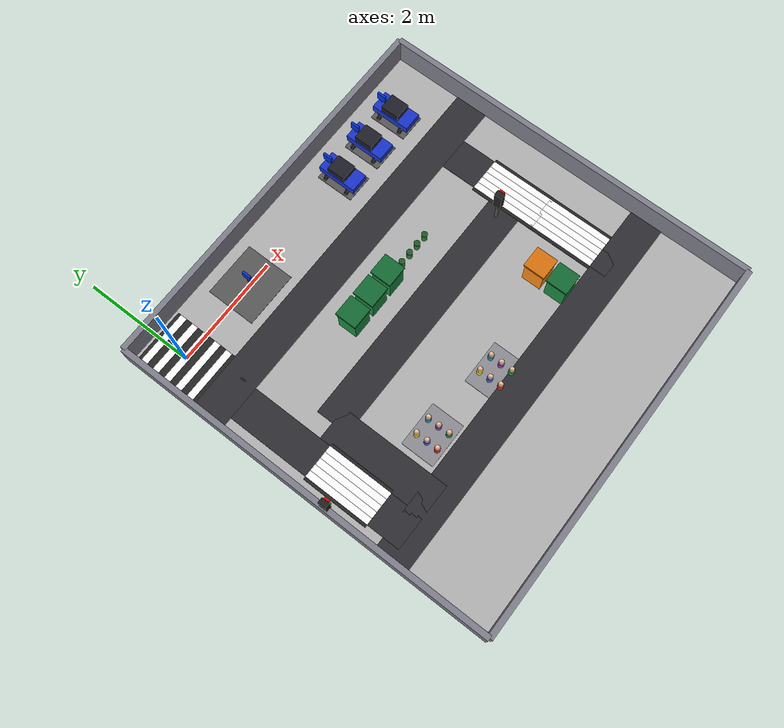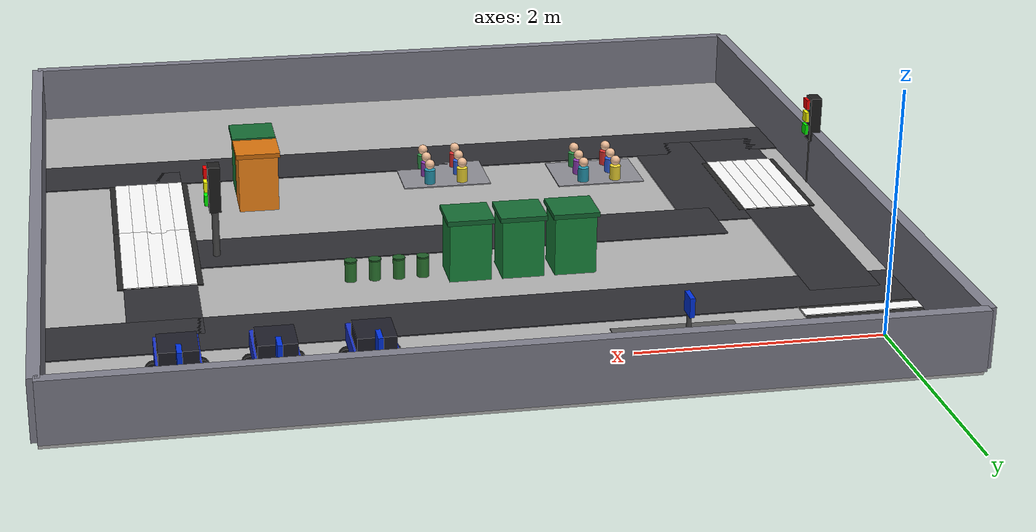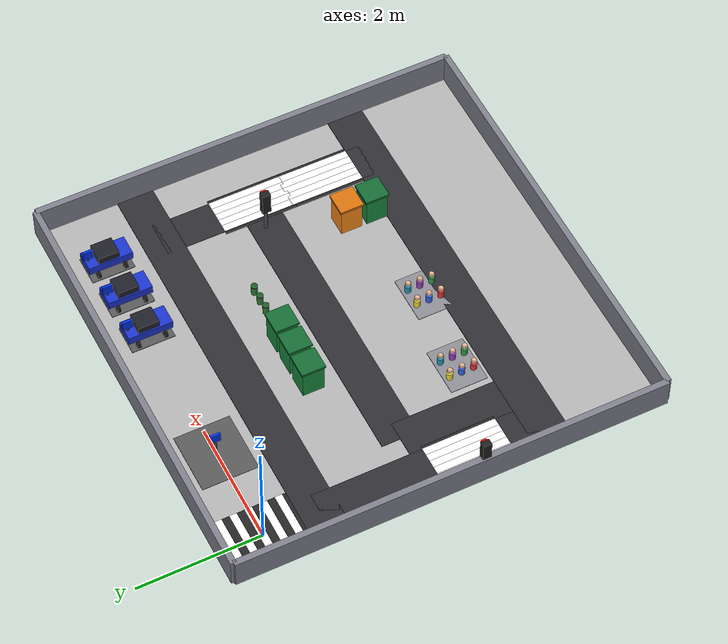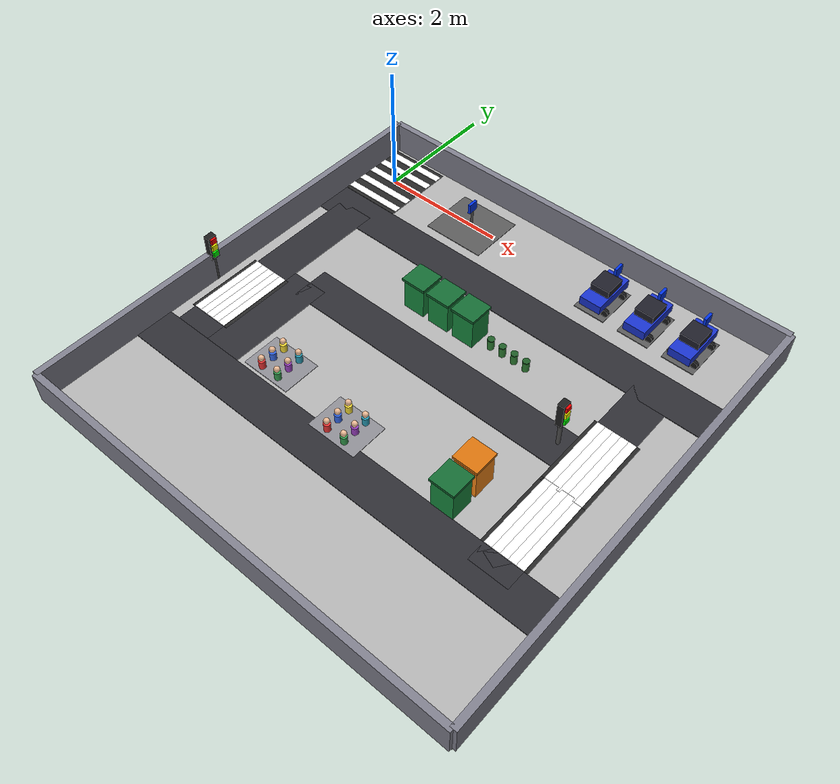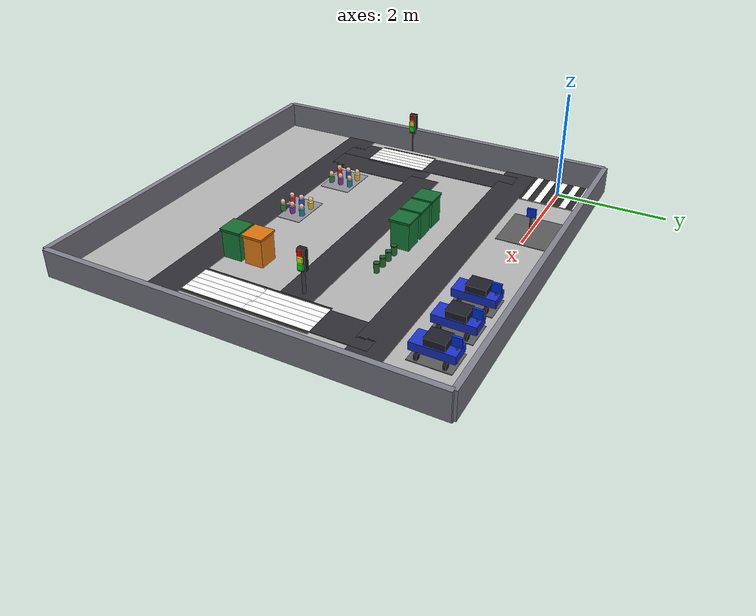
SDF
<?xml version="1.0" ?>

<sdf version="1.6">
  <world name="robot_nav_field">

    <!-- ======================= 物理引擎 ======================= -->
    <physics type="ode">
      <max_step_size>0.001</max_step_size>
      <real_time_factor>1</real_time_factor>
      <real_time_update_rate>1000</real_time_update_rate>
    </physics>

    <!-- ======================= 场景与光照 ======================= -->
    <scene>
      <ambient>0.45 0.45 0.45 1</ambient>
      <background>0.7 0.7 0.7 1</background>
      <shadows>true</shadows>
    </scene>

    <light name="sun" type="directional">
      <pose>0 0 10 0 0 0</pose>
      <diffuse>0.8 0.8 0.8 1</diffuse>
      <specular>0.1 0.1 0.1 1</specular>
      <direction>0.3 0.3 -1</direction>
      <cast_shadows>true</cast_shadows>
    </light>

    <!-- ============================================================
         1. 地面 (Ground Plane)  —— 7m x 7m
         ============================================================ -->
    <model name="ground_plane">
      <static>true</static>
      <pose>2.975 -2.8 -0.025 0 0 0</pose>
      <link name="ground_link">
        <visual name="ground_visual">
          <geometry><box><size>7.0 7.0 0.05</size></box></geometry>
          <material><ambient>0.70 0.70 0.70 1</ambient><diffuse>0.70 0.70 0.70 1</diffuse></material>
        </visual>
        <collision name="ground_collision">
          <geometry><box><size>7.0 7.0 0.05</size></box></geometry>
        </collision>
      </link>
    </model>

    <!-- ============================================================
         2. 外部围墙 (Boundary Walls)  —— 高 0.5m
         ============================================================ -->
    <model name="boundary_walls">
      <static>true</static>
      <link name="north_wall">
        <pose>-0.525 -2.8 0.25 0 0 0</pose>
        <visual name="north_visual"><geometry><box><size>0.1 7.0 0.5</size></box></geometry><material><ambient>0.50 0.50 0.55 1</ambient><diffuse>0.50 0.50 0.55 1</diffuse></material></visual>
        <collision name="north_collision"><geometry><box><size>0.1 7.0 0.5</size></box></geometry></collision>
      </link>
      <link name="south_wall">
        <pose>6.475 -2.8 0.25 0 0 0</pose>
        <visual name="south_visual"><geometry><box><size>0.1 7.0 0.5</size></box></geometry><material><ambient>0.50 0.50 0.55 1</ambient><diffuse>0.50 0.50 0.55 1</diffuse></material></visual>
        <collision name="south_collision"><geometry><box><size>0.1 7.0 0.5</size></box></geometry></collision>
      </link>
      <link name="west_wall">
        <pose>2.975 -6.3 0.25 0 0 0</pose>
        <visual name="west_visual"><geometry><box><size>7.0 0.1 0.5</size></box></geometry><material><ambient>0.50 0.50 0.55 1</ambient><diffuse>0.50 0.50 0.55 1</diffuse></material></visual>
        <collision name="west_collision"><geometry><box><size>7.0 0.1 0.5</size></box></geometry></collision>
      </link>
      <link name="east_wall">
        <pose>2.975 0.7 0.25 0 0 0</pose>
        <visual name="east_visual"><geometry><box><size>7.0 0.1 0.5</size></box></geometry><material><ambient>0.50 0.50 0.55 1</ambient><diffuse>0.50 0.50 0.55 1</diffuse></material></visual>
        <collision name="east_collision"><geometry><box><size>7.0 0.1 0.5</size></box></geometry></collision>
      </link>
    </model>

    <model name="roads">
      <static>true</static>
      <!-- 顶部通道 -->
      <link name="road_top">
        <pose>0 -2.7 0.005 0 0 0</pose>
        <visual name="road_top_visual"><geometry><box><size>0.6 3.6 0.01</size></box></geometry><material><ambient>0.18 0.18 0.20 1</ambient><diffuse>0.18 0.18 0.20 1</diffuse></material></visual>
        <collision name="road_top_collision"><geometry><box><size>0.6 3.6 0.01</size></box></geometry></collision>
      </link>
      <!-- 右侧通道 -->
      <link name="road_right">
        <pose>2.975 -0.9 0.005 0 0 0</pose>
        <visual name="road_right_visual"><geometry><box><size>7.0 0.6 0.01</size></box></geometry><material><ambient>0.18 0.18 0.20 1</ambient><diffuse>0.18 0.18 0.20 1</diffuse></material></visual>
        <collision name="road_right_collision"><geometry><box><size>7.0 0.6 0.01</size></box></geometry></collision>
      </link>
      <!-- 底部横向通道 -->
      <link name="road_bottom_left">
        <pose>5.5 -2.7 0.005 0 0 0</pose>
        <visual name="road_bl_visual"><geometry><box><size>0.6 3.6 0.01</size></box></geometry><material><ambient>0.18 0.18 0.20 1</ambient><diffuse>0.18 0.18 0.20 1</diffuse></material></visual>
        <collision name="road_bl_collision"><geometry><box><size>0.6 3.6 0.01</size></box></geometry></collision>
      </link>
      <!-- 左侧街道 -->
      <link name="road_left">
        <pose>2.975 -4.5 0.005 0 0 0</pose>
        <visual name="road_left_visual"><geometry><box><size>7.0 0.6 0.01</size></box></geometry><material><ambient>0.18 0.18 0.20 1</ambient><diffuse>0.18 0.18 0.20 1</diffuse></material></visual>
        <collision name="road_left_collision"><geometry><box><size>7.0 0.6 0.01</size></box></geometry></collision>
      </link>
      <!-- ===== 新增 L 形内部路 ===== -->
      <!-- 纵向路: 楼宇西侧, Y=-2.5, X 0.6 -> 5.5 -->
      <link name="road_vertical">
        <pose>3.05 -2.5 0.005 0 0 0</pose>
        <visual name="road_vertical_visual"><geometry><box><size>4.9 0.6 0.01</size></box></geometry><material><ambient>0.18 0.18 0.20 1</ambient><diffuse>0.18 0.18 0.20 1</diffuse></material></visual>
        <collision name="road_vertical_collision"><geometry><box><size>4.9 0.6 0.01</size></box></geometry></collision>
      </link>
      <!-- 横向路: 街区A上方, X=0.6, Y -2.5 -> -4.5 -->
      <link name="road_horizontal">
        <pose>0.6 -3.5 0.005 0 0 0</pose>
        <visual name="road_horizontal_visual"><geometry><box><size>0.6 2.0 0.01</size></box></geometry><material><ambient>0.18 0.18 0.20 1</ambient><diffuse>0.18 0.18 0.20 1</diffuse></material></visual>
        <collision name="road_horizontal_collision"><geometry><box><size>0.6 2.0 0.01</size></box></geometry></collision>
      </link>
    </model>

    <!-- ============================================================
         4. 起点/终点区  —— 斑马线, 中心 (0,0,0), 右上角
         ============================================================ -->
    <model name="start_finish">
      <static>true</static>
      <link name="zebra_link">
        <visual name="zebra_base">
          <pose>0 0 0.006 0 0 0</pose>
          <geometry><box><size>1.0 1.2 0.012</size></box></geometry>
          <material><ambient>0.15 0.15 0.15 1</ambient><diffuse>0.15 0.15 0.15 1</diffuse></material>
        </visual>
        <collision name="zebra_base_col">
          <pose>0 0 0.006 0 0 0</pose>
          <geometry><box><size>1.0 1.2 0.012</size></box></geometry>
        </collision>
        <visual name="stripe_1"><pose>0 -0.48 0.013 0 0 0</pose><geometry><box><size>1.0 0.12 0.014</size></box></geometry><material><ambient>1 1 1 1</ambient><diffuse>1 1 1 1</diffuse></material></visual>
        <visual name="stripe_2"><pose>0 -0.24 0.013 0 0 0</pose><geometry><box><size>1.0 0.12 0.014</size></box></geometry><material><ambient>1 1 1 1</ambient><diffuse>1 1 1 1</diffuse></material></visual>
        <visual name="stripe_3"><pose>0 0 0.013 0 0 0</pose><geometry><box><size>1.0 0.12 0.014</size></box></geometry><material><ambient>1 1 1 1</ambient><diffuse>1 1 1 1</diffuse></material></visual>
        <visual name="stripe_4"><pose>0 0.24 0.013 0 0 0</pose><geometry><box><size>1.0 0.12 0.014</size></box></geometry><material><ambient>1 1 1 1</ambient><diffuse>1 1 1 1</diffuse></material></visual>
        <visual name="stripe_5"><pose>0 0.48 0.013 0 0 0</pose><geometry><box><size>1.0 0.12 0.014</size></box></geometry><material><ambient>1 1 1 1</ambient><diffuse>1 1 1 1</diffuse></material></visual>
      </link>
    </model>

    <!-- ============================================================
         5. 顶部斑马线 + 红绿灯  —— (0, -3.3), 横向纹路(东西向路)
         ============================================================ -->
    <model name="zebra_top">
      <static>true</static>
      <pose>0 -3.3 0 0 0 0</pose>
      <link name="zebra_top_link">
        <visual name="base">
          <pose>0 0 0.006 0 0 0</pose>
          <geometry><box><size>0.7 1.2 0.012</size></box></geometry>
          <material><ambient>0.15 0.15 0.15 1</ambient><diffuse>0.15 0.15 0.15 1</diffuse></material>
        </visual>
        <collision name="base_col">
          <pose>0 0 0.006 0 0 0</pose>
          <geometry><box><size>0.7 1.2 0.012</size></box></geometry>
        </collision>
        <visual name="s1"><pose>-0.24 0 0.013 0 0 0</pose><geometry><box><size>0.12 1.2 0.014</size></box></geometry><material><ambient>1 1 1 1</ambient><diffuse>1 1 1 1</diffuse></material></visual>
        <visual name="s2"><pose>-0.12 0 0.013 0 0 0</pose><geometry><box><size>0.12 1.2 0.014</size></box></geometry><material><ambient>1 1 1 1</ambient><diffuse>1 1 1 1</diffuse></material></visual>
        <visual name="s3"><pose>0 0 0.013 0 0 0</pose><geometry><box><size>0.12 1.2 0.014</size></box></geometry><material><ambient>1 1 1 1</ambient><diffuse>1 1 1 1</diffuse></material></visual>
        <visual name="s4"><pose>0.12 0 0.013 0 0 0</pose><geometry><box><size>0.12 1.2 0.014</size></box></geometry><material><ambient>1 1 1 1</ambient><diffuse>1 1 1 1</diffuse></material></visual>
        <visual name="s5"><pose>0.24 0 0.013 0 0 0</pose><geometry><box><size>0.12 1.2 0.014</size></box></geometry><material><ambient>1 1 1 1</ambient><diffuse>1 1 1 1</diffuse></material></visual>
      </link>
    </model>

    <model name="traffic_light_top">
      <static>true</static>
      <link name="tl_top_link">
        <visual name="pole_visual">
          <pose>-0.5 -3.3 0.3 0 0 0</pose>
          <geometry><cylinder><radius>0.03</radius><length>0.6</length></cylinder></geometry>
          <material><ambient>0.30 0.30 0.30 1</ambient><diffuse>0.30 0.30 0.30 1</diffuse></material>
        </visual>
        <collision name="pole_col">
          <pose>-0.5 -3.3 0.3 0 0 0</pose>
          <geometry><cylinder><radius>0.03</radius><length>0.6</length></cylinder></geometry>
        </collision>
        <visual name="housing_visual">
          <pose>-0.5 -3.3 0.62 0 0 0</pose>
          <geometry><box><size>0.10 0.14 0.40</size></box></geometry>
          <material><ambient>0.12 0.12 0.12 1</ambient><diffuse>0.12 0.12 0.12 1</diffuse></material>
        </visual>
        <collision name="housing_col">
          <pose>-0.5 -3.3 0.62 0 0 0</pose>
          <geometry><box><size>0.10 0.14 0.40</size></box></geometry>
        </collision>
        <visual name="red_visual"><pose>-0.43 -3.3 0.76 0 0 0</pose><geometry><box><size>0.03 0.09 0.09</size></box></geometry><material><ambient>1 0 0 1</ambient><diffuse>1 0 0 1</diffuse></material></visual>
        <visual name="yellow_visual"><pose>-0.43 -3.3 0.64 0 0 0</pose><geometry><box><size>0.03 0.09 0.09</size></box></geometry><material><ambient>1 1 0 1</ambient><diffuse>1 1 0 1</diffuse></material></visual>
        <visual name="green_visual"><pose>-0.43 -3.3 0.52 0 0 0</pose><geometry><box><size>0.03 0.09 0.09</size></box></geometry><material><ambient>0 1 0 1</ambient><diffuse>0 1 0 1</diffuse></material></visual>
      </link>
    </model>

    <!-- ============================================================
         6. A街区 (左上角人偶区)  —— 6 个人偶, 移至横向路下方 (1.4, -3.85)
         ============================================================ -->
    <model name="block_a">
      <static>true</static>
      <pose>1.4 -3.85 0 0 0 0</pose>
      <link name="block_a_link">
        <visual name="sidewalk">
          <pose>0 0 0.005 0 0 0</pose>
          <geometry><box><size>0.8 0.6 0.01</size></box></geometry>
          <material><ambient>0.55 0.55 0.58 1</ambient><diffuse>0.55 0.55 0.58 1</diffuse></material>
        </visual>
        <collision name="sidewalk_col">
          <pose>0 0 0.005 0 0 0</pose>
          <geometry><box><size>0.8 0.6 0.01</size></box></geometry>
        </collision>
        <visual name="p1_body"><pose>-0.15 -0.2 0.07 0 0 0</pose><geometry><cylinder><radius>0.05</radius><length>0.14</length></cylinder></geometry><material><ambient>0.90 0.20 0.20 1</ambient><diffuse>0.90 0.20 0.20 1</diffuse></material></visual>
        <visual name="p1_head"><pose>-0.15 -0.2 0.19 0 0 0</pose><geometry><sphere><radius>0.045</radius></sphere></geometry><material><ambient>0.95 0.75 0.60 1</ambient><diffuse>0.95 0.75 0.60 1</diffuse></material></visual>
        <visual name="p2_body"><pose>-0.15 0 0.07 0 0 0</pose><geometry><cylinder><radius>0.05</radius><length>0.14</length></cylinder></geometry><material><ambient>0.20 0.40 0.90 1</ambient><diffuse>0.20 0.40 0.90 1</diffuse></material></visual>
        <visual name="p2_head"><pose>-0.15 0 0.19 0 0 0</pose><geometry><sphere><radius>0.045</radius></sphere></geometry><material><ambient>0.95 0.75 0.60 1</ambient><diffuse>0.95 0.75 0.60 1</diffuse></material></visual>
        <visual name="p3_body"><pose>-0.15 0.2 0.07 0 0 0</pose><geometry><cylinder><radius>0.05</radius><length>0.14</length></cylinder></geometry><material><ambient>0.95 0.85 0.20 1</ambient><diffuse>0.95 0.85 0.20 1</diffuse></material></visual>
        <visual name="p3_head"><pose>-0.15 0.2 0.19 0 0 0</pose><geometry><sphere><radius>0.045</radius></sphere></geometry><material><ambient>0.95 0.75 0.60 1</ambient><diffuse>0.95 0.75 0.60 1</diffuse></material></visual>
        <visual name="p4_body"><pose>0.15 -0.2 0.07 0 0 0</pose><geometry><cylinder><radius>0.05</radius><length>0.14</length></cylinder></geometry><material><ambient>0.20 0.60 0.30 1</ambient><diffuse>0.20 0.60 0.30 1</diffuse></material></visual>
        <visual name="p4_head"><pose>0.15 -0.2 0.19 0 0 0</pose><geometry><sphere><radius>0.045</radius></sphere></geometry><material><ambient>0.95 0.75 0.60 1</ambient><diffuse>0.95 0.75 0.60 1</diffuse></material></visual>
        <visual name="p5_body"><pose>0.15 0 0.07 0 0 0</pose><geometry><cylinder><radius>0.05</radius><length>0.14</length></cylinder></geometry><material><ambient>0.60 0.25 0.75 1</ambient><diffuse>0.60 0.25 0.75 1</diffuse></material></visual>
        <visual name="p5_head"><pose>0.15 0 0.19 0 0 0</pose><geometry><sphere><radius>0.045</radius></sphere></geometry><material><ambient>0.95 0.75 0.60 1</ambient><diffuse>0.95 0.75 0.60 1</diffuse></material></visual>
        <visual name="p6_body"><pose>0.15 0.2 0.07 0 0 0</pose><geometry><cylinder><radius>0.05</radius><length>0.14</length></cylinder></geometry><material><ambient>0.15 0.60 0.70 1</ambient><diffuse>0.15 0.60 0.70 1</diffuse></material></visual>
        <visual name="p6_head"><pose>0.15 0.2 0.19 0 0 0</pose><geometry><sphere><radius>0.045</radius></sphere></geometry><material><ambient>0.95 0.75 0.60 1</ambient><diffuse>0.95 0.75 0.60 1</diffuse></material></visual>
      </link>
    </model>

    <!-- ============================================================
         7. B街区 (左侧中部人偶区)  —— 6 个人偶 (2.8, -4.03)
         ============================================================ -->
    <model name="block_b">
      <static>true</static>
      <pose>2.8 -4.03 0 0 0 0</pose>
      <link name="block_b_link">
        <visual name="sidewalk">
          <pose>0 0 0.005 0 0 0</pose>
          <geometry><box><size>0.8 0.6 0.01</size></box></geometry>
          <material><ambient>0.55 0.55 0.58 1</ambient><diffuse>0.55 0.55 0.58 1</diffuse></material>
        </visual>
        <collision name="sidewalk_col">
          <pose>0 0 0.005 0 0 0</pose>
          <geometry><box><size>0.8 0.6 0.01</size></box></geometry>
        </collision>
        <visual name="p1_body"><pose>-0.15 -0.2 0.07 0 0 0</pose><geometry><cylinder><radius>0.05</radius><length>0.14</length></cylinder></geometry><material><ambient>0.90 0.20 0.20 1</ambient><diffuse>0.90 0.20 0.20 1</diffuse></material></visual>
        <visual name="p1_head"><pose>-0.15 -0.2 0.19 0 0 0</pose><geometry><sphere><radius>0.045</radius></sphere></geometry><material><ambient>0.95 0.75 0.60 1</ambient><diffuse>0.95 0.75 0.60 1</diffuse></material></visual>
        <visual name="p2_body"><pose>-0.15 0 0.07 0 0 0</pose><geometry><cylinder><radius>0.05</radius><length>0.14</length></cylinder></geometry><material><ambient>0.20 0.40 0.90 1</ambient><diffuse>0.20 0.40 0.90 1</diffuse></material></visual>
        <visual name="p2_head"><pose>-0.15 0 0.19 0 0 0</pose><geometry><sphere><radius>0.045</radius></sphere></geometry><material><ambient>0.95 0.75 0.60 1</ambient><diffuse>0.95 0.75 0.60 1</diffuse></material></visual>
        <visual name="p3_body"><pose>-0.15 0.2 0.07 0 0 0</pose><geometry><cylinder><radius>0.05</radius><length>0.14</length></cylinder></geometry><material><ambient>0.95 0.85 0.20 1</ambient><diffuse>0.95 0.85 0.20 1</diffuse></material></visual>
        <visual name="p3_head"><pose>-0.15 0.2 0.19 0 0 0</pose><geometry><sphere><radius>0.045</radius></sphere></geometry><material><ambient>0.95 0.75 0.60 1</ambient><diffuse>0.95 0.75 0.60 1</diffuse></material></visual>
        <visual name="p4_body"><pose>0.15 -0.2 0.07 0 0 0</pose><geometry><cylinder><radius>0.05</radius><length>0.14</length></cylinder></geometry><material><ambient>0.20 0.60 0.30 1</ambient><diffuse>0.20 0.60 0.30 1</diffuse></material></visual>
        <visual name="p4_head"><pose>0.15 -0.2 0.19 0 0 0</pose><geometry><sphere><radius>0.045</radius></sphere></geometry><material><ambient>0.95 0.75 0.60 1</ambient><diffuse>0.95 0.75 0.60 1</diffuse></material></visual>
        <visual name="p5_body"><pose>0.15 0 0.07 0 0 0</pose><geometry><cylinder><radius>0.05</radius><length>0.14</length></cylinder></geometry><material><ambient>0.60 0.25 0.75 1</ambient><diffuse>0.60 0.25 0.75 1</diffuse></material></visual>
        <visual name="p5_head"><pose>0.15 0 0.19 0 0 0</pose><geometry><sphere><radius>0.045</radius></sphere></geometry><material><ambient>0.95 0.75 0.60 1</ambient><diffuse>0.95 0.75 0.60 1</diffuse></material></visual>
        <visual name="p6_body"><pose>0.15 0.2 0.07 0 0 0</pose><geometry><cylinder><radius>0.05</radius><length>0.14</length></cylinder></geometry><material><ambient>0.15 0.60 0.70 1</ambient><diffuse>0.15 0.60 0.70 1</diffuse></material></visual>
        <visual name="p6_head"><pose>0.15 0.2 0.19 0 0 0</pose><geometry><sphere><radius>0.045</radius></sphere></geometry><material><ambient>0.95 0.75 0.60 1</ambient><diffuse>0.95 0.75 0.60 1</diffuse></material></visual>
      </link>
    </model>

    <model name="building_a">
      <static>true</static>
      <pose>2.10 -1.75 0 0 0 0</pose>
      <link name="building_a_link">
        <visual name="body">
          <pose>0 0 0.25 0 0 0</pose>
          <geometry><box><size>0.35 0.35 0.5</size></box></geometry>
          <material><ambient>0.10 0.55 0.25 1</ambient><diffuse>0.10 0.55 0.25 1</diffuse></material>
        </visual>
        <collision name="body_col">
          <pose>0 0 0.25 0 0 0</pose>
          <geometry><box><size>0.35 0.35 0.5</size></box></geometry>
        </collision>
        <visual name="roof">
          <pose>0 0 0.52 0 0 0</pose>
          <geometry><box><size>0.39 0.39 0.04</size></box></geometry>
          <material><ambient>0.08 0.42 0.20 1</ambient><diffuse>0.08 0.42 0.20 1</diffuse></material>
        </visual>
      </link>
    </model>

    <model name="building_b">
      <static>true</static>
      <pose>2.54 -1.75 0 0 0 0</pose>
      <link name="building_b_link">
        <visual name="body">
          <pose>0 0 0.25 0 0 0</pose>
          <geometry><box><size>0.35 0.35 0.5</size></box></geometry>
          <material><ambient>0.10 0.55 0.25 1</ambient><diffuse>0.10 0.55 0.25 1</diffuse></material>
        </visual>
        <collision name="body_col">
          <pose>0 0 0.25 0 0 0</pose>
          <geometry><box><size>0.35 0.35 0.5</size></box></geometry>
        </collision>
        <visual name="roof">
          <pose>0 0 0.52 0 0 0</pose>
          <geometry><box><size>0.39 0.39 0.04</size></box></geometry>
          <material><ambient>0.08 0.42 0.20 1</ambient><diffuse>0.08 0.42 0.20 1</diffuse></material>
        </visual>
      </link>
    </model>

    <model name="building_c">
      <static>true</static>
      <pose>2.98 -1.75 0 0 0 0</pose>
      <link name="building_c_link">
        <visual name="body">
          <pose>0 0 0.25 0 0 0</pose>
          <geometry><box><size>0.35 0.35 0.5</size></box></geometry>
          <material><ambient>0.10 0.55 0.25 1</ambient><diffuse>0.10 0.55 0.25 1</diffuse></material>
        </visual>
        <collision name="body_col">
          <pose>0 0 0.25 0 0 0</pose>
          <geometry><box><size>0.35 0.35 0.5</size></box></geometry>
        </collision>
        <visual name="roof">
          <pose>0 0 0.52 0 0 0</pose>
          <geometry><box><size>0.39 0.39 0.04</size></box></geometry>
          <material><ambient>0.08 0.42 0.20 1</ambient><diffuse>0.08 0.42 0.20 1</diffuse></material>
        </visual>
      </link>
    </model>

    <!-- ============================================================
         9. 电动车停车区 (右侧偏上)  —— 车已删除, 只留 P 停车牌
         ============================================================ -->
    <model name="ev_parking_zone">
      <static>true</static>
      <pose>1.58 0 0 0 0 0</pose>
      <link name="ev_parking_link">
        <visual name="pad">
          <pose>0 0 0.005 0 0 0</pose>
          <geometry><box><size>1.0 0.9 0.01</size></box></geometry>
          <material><ambient>0.35 0.35 0.35 1</ambient><diffuse>0.35 0.35 0.35 1</diffuse></material>
        </visual>
        <collision name="pad_col">
          <pose>0 0 0.005 0 0 0</pose>
          <geometry><box><size>1.0 0.9 0.01</size></box></geometry>
        </collision>
        <visual name="p_pole">
          <pose>0 0 0.175 0 0 0</pose>
          <geometry><cylinder><radius>0.02</radius><length>0.35</length></cylinder></geometry>
          <material><ambient>0.30 0.30 0.30 1</ambient><diffuse>0.30 0.30 0.30 1</diffuse></material>
        </visual>
        <collision name="p_pole_col">
          <pose>0 0 0.175 0 0 0</pose>
          <geometry><cylinder><radius>0.02</radius><length>0.35</length></cylinder></geometry>
        </collision>
        <visual name="p_sign">
          <pose>0 0 0.38 0 0 0</pose>
          <geometry><box><size>0.04 0.16 0.16</size></box></geometry>
          <material><ambient>0.00 0.20 0.90 1</ambient><diffuse>0.00 0.20 0.90 1</diffuse></material>
        </visual>
      </link>
    </model>

    <!-- ============================================================
         10. 停车位区 (1-3号, 右下角)  —— 车位改为东西向(0.5x0.7)
         ============================================================ -->
    <model name="parking_slots">
      <static>true</static>
      <link name="slot_3">
        <pose>4.00 0 0.006 0 0 0</pose>
        <visual name="slot3_visual"><geometry><box><size>0.5 0.7 0.012</size></box></geometry><material><ambient>0.35 0.35 0.35 1</ambient><diffuse>0.35 0.35 0.35 1</diffuse></material></visual>
        <collision name="slot3_col"><geometry><box><size>0.5 0.7 0.012</size></box></geometry></collision>
      </link>
      <link name="slot_2">
        <pose>4.73 0 0.006 0 0 0</pose>
        <visual name="slot2_visual"><geometry><box><size>0.5 0.7 0.012</size></box></geometry><material><ambient>0.35 0.35 0.35 1</ambient><diffuse>0.35 0.35 0.35 1</diffuse></material></visual>
        <collision name="slot2_col"><geometry><box><size>0.5 0.7 0.012</size></box></geometry></collision>
      </link>
      <link name="slot_1">
        <pose>5.45 0 0.006 0 0 0</pose>
        <visual name="slot1_visual"><geometry><box><size>0.5 0.7 0.012</size></box></geometry><material><ambient>0.35 0.35 0.35 1</ambient><diffuse>0.35 0.35 0.35 1</diffuse></material></visual>
        <collision name="slot1_col"><geometry><box><size>0.5 0.7 0.012</size></box></geometry></collision>
      </link>
    </model>

    <!-- ============================================================
         11. 停车位汽车 x3  —— 旋转 90°(yaw=1.5708), 车头朝右(+Y)
         ============================================================ -->
    <model name="car_slot_3">
      <static>true</static>
      <pose>4.00 0 0 0 0 1.5708</pose>
      <link name="car_slot_3_link">
        <visual name="body"><pose>0 0 0.19 0 0 0</pose><geometry><box><size>0.72 0.34 0.14</size></box></geometry><material><ambient>0.10 0.20 0.80 1</ambient><diffuse>0.10 0.20 0.80 1</diffuse></material></visual>
        <collision name="body_col"><pose>0 0 0.19 0 0 0</pose><geometry><box><size>0.72 0.34 0.14</size></box></geometry></collision>
        <visual name="cabin"><pose>0.02 0 0.32 0 0 0</pose><geometry><box><size>0.34 0.30 0.12</size></box></geometry><material><ambient>0.12 0.12 0.16 1</ambient><diffuse>0.12 0.12 0.16 1</diffuse></material></visual>
        <visual name="w1"><pose>0.22 0.18 0.06 0 1.5708 0</pose><geometry><cylinder><radius>0.06</radius><length>0.05</length></cylinder></geometry><material><ambient>0.10 0.10 0.10 1</ambient><diffuse>0.10 0.10 0.10 1</diffuse></material></visual>
        <visual name="w2"><pose>0.22 -0.18 0.06 0 1.5708 0</pose><geometry><cylinder><radius>0.06</radius><length>0.05</length></cylinder></geometry><material><ambient>0.10 0.10 0.10 1</ambient><diffuse>0.10 0.10 0.10 1</diffuse></material></visual>
        <visual name="w3"><pose>-0.22 0.18 0.06 0 1.5708 0</pose><geometry><cylinder><radius>0.06</radius><length>0.05</length></cylinder></geometry><material><ambient>0.10 0.10 0.10 1</ambient><diffuse>0.10 0.10 0.10 1</diffuse></material></visual>
        <visual name="w4"><pose>-0.22 -0.18 0.06 0 1.5708 0</pose><geometry><cylinder><radius>0.06</radius><length>0.05</length></cylinder></geometry><material><ambient>0.10 0.10 0.10 1</ambient><diffuse>0.10 0.10 0.10 1</diffuse></material></visual>
      </link>
    </model>

    <model name="car_slot_2">
      <static>true</static>
      <pose>4.73 0 0 0 0 1.5708</pose>
      <link name="car_slot_2_link">
        <visual name="body"><pose>0 0 0.19 0 0 0</pose><geometry><box><size>0.72 0.34 0.14</size></box></geometry><material><ambient>0.10 0.20 0.80 1</ambient><diffuse>0.10 0.20 0.80 1</diffuse></material></visual>
        <collision name="body_col"><pose>0 0 0.19 0 0 0</pose><geometry><box><size>0.72 0.34 0.14</size></box></geometry></collision>
        <visual name="cabin"><pose>0.02 0 0.32 0 0 0</pose><geometry><box><size>0.34 0.30 0.12</size></box></geometry><material><ambient>0.12 0.12 0.16 1</ambient><diffuse>0.12 0.12 0.16 1</diffuse></material></visual>
        <visual name="w1"><pose>0.22 0.18 0.06 0 1.5708 0</pose><geometry><cylinder><radius>0.06</radius><length>0.05</length></cylinder></geometry><material><ambient>0.10 0.10 0.10 1</ambient><diffuse>0.10 0.10 0.10 1</diffuse></material></visual>
        <visual name="w2"><pose>0.22 -0.18 0.06 0 1.5708 0</pose><geometry><cylinder><radius>0.06</radius><length>0.05</length></cylinder></geometry><material><ambient>0.10 0.10 0.10 1</ambient><diffuse>0.10 0.10 0.10 1</diffuse></material></visual>
        <visual name="w3"><pose>-0.22 0.18 0.06 0 1.5708 0</pose><geometry><cylinder><radius>0.06</radius><length>0.05</length></cylinder></geometry><material><ambient>0.10 0.10 0.10 1</ambient><diffuse>0.10 0.10 0.10 1</diffuse></material></visual>
        <visual name="w4"><pose>-0.22 -0.18 0.06 0 1.5708 0</pose><geometry><cylinder><radius>0.06</radius><length>0.05</length></cylinder></geometry><material><ambient>0.10 0.10 0.10 1</ambient><diffuse>0.10 0.10 0.10 1</diffuse></material></visual>
      </link>
    </model>

    <model name="car_slot_1">
      <static>true</static>
      <pose>5.45 0 0 0 0 1.5708</pose>
      <link name="car_slot_1_link">
        <visual name="body"><pose>0 0 0.19 0 0 0</pose><geometry><box><size>0.72 0.34 0.14</size></box></geometry><material><ambient>0.10 0.20 0.80 1</ambient><diffuse>0.10 0.20 0.80 1</diffuse></material></visual>
        <collision name="body_col"><pose>0 0 0.19 0 0 0</pose><geometry><box><size>0.72 0.34 0.14</size></box></geometry></collision>
        <visual name="cabin"><pose>0.02 0 0.32 0 0 0</pose><geometry><box><size>0.34 0.30 0.12</size></box></geometry><material><ambient>0.12 0.12 0.16 1</ambient><diffuse>0.12 0.12 0.16 1</diffuse></material></visual>
        <visual name="w1"><pose>0.22 0.18 0.06 0 1.5708 0</pose><geometry><cylinder><radius>0.06</radius><length>0.05</length></cylinder></geometry><material><ambient>0.10 0.10 0.10 1</ambient><diffuse>0.10 0.10 0.10 1</diffuse></material></visual>
        <visual name="w2"><pose>0.22 -0.18 0.06 0 1.5708 0</pose><geometry><cylinder><radius>0.06</radius><length>0.05</length></cylinder></geometry><material><ambient>0.10 0.10 0.10 1</ambient><diffuse>0.10 0.10 0.10 1</diffuse></material></visual>
        <visual name="w3"><pose>-0.22 0.18 0.06 0 1.5708 0</pose><geometry><cylinder><radius>0.06</radius><length>0.05</length></cylinder></geometry><material><ambient>0.10 0.10 0.10 1</ambient><diffuse>0.10 0.10 0.10 1</diffuse></material></visual>
        <visual name="w4"><pose>-0.22 -0.18 0.06 0 1.5708 0</pose><geometry><cylinder><radius>0.06</radius><length>0.05</length></cylinder></geometry><material><ambient>0.10 0.10 0.10 1</ambient><diffuse>0.10 0.10 0.10 1</diffuse></material></visual>
      </link>
    </model>

    <!-- 停车位 P 指示牌 x3 -->
    <model name="p_sign_slot_3">
      <static>true</static>
      <pose>4.00 0.3 0 0 0 0</pose>
      <link name="ps3_link">
        <visual name="pole"><pose>0 0 0.175 0 0 0</pose><geometry><cylinder><radius>0.02</radius><length>0.35</length></cylinder></geometry><material><ambient>0.30 0.30 0.30 1</ambient><diffuse>0.30 0.30 0.30 1</diffuse></material></visual>
        <collision name="pole_col"><pose>0 0 0.175 0 0 0</pose><geometry><cylinder><radius>0.02</radius><length>0.35</length></cylinder></geometry></collision>
        <visual name="sign"><pose>0 0 0.38 0 0 0</pose><geometry><box><size>0.04 0.16 0.16</size></box></geometry><material><ambient>0.00 0.20 0.90 1</ambient><diffuse>0.00 0.20 0.90 1</diffuse></material></visual>
      </link>
    </model>
    <model name="p_sign_slot_2">
      <static>true</static>
      <pose>4.73 0.3 0 0 0 0</pose>
      <link name="ps2_link">
        <visual name="pole"><pose>0 0 0.175 0 0 0</pose><geometry><cylinder><radius>0.02</radius><length>0.35</length></cylinder></geometry><material><ambient>0.30 0.30 0.30 1</ambient><diffuse>0.30 0.30 0.30 1</diffuse></material></visual>
        <collision name="pole_col"><pose>0 0 0.175 0 0 0</pose><geometry><cylinder><radius>0.02</radius><length>0.35</length></cylinder></geometry></collision>
        <visual name="sign"><pose>0 0 0.38 0 0 0</pose><geometry><box><size>0.04 0.16 0.16</size></box></geometry><material><ambient>0.00 0.20 0.90 1</ambient><diffuse>0.00 0.20 0.90 1</diffuse></material></visual>
      </link>
    </model>
    <model name="p_sign_slot_1">
      <static>true</static>
      <pose>5.45 0.3 0 0 0 0</pose>
      <link name="ps1_link">
        <visual name="pole"><pose>0 0 0.175 0 0 0</pose><geometry><cylinder><radius>0.02</radius><length>0.35</length></cylinder></geometry><material><ambient>0.30 0.30 0.30 1</ambient><diffuse>0.30 0.30 0.30 1</diffuse></material></visual>
        <collision name="pole_col"><pose>0 0 0.175 0 0 0</pose><geometry><cylinder><radius>0.02</radius><length>0.35</length></cylinder></geometry></collision>
        <visual name="sign"><pose>0 0 0.38 0 0 0</pose><geometry><box><size>0.04 0.16 0.16</size></box></geometry><material><ambient>0.00 0.20 0.90 1</ambient><diffuse>0.00 0.20 0.90 1</diffuse></material></visual>
      </link>
    </model>

    <!-- ============================================================
         12. 垃圾桶 x4  —— 缩小至 1/3, 移至楼宇C下方 (Y=-1.75)
         ============================================================ -->
    <model name="trash_bins">
      <static>true</static>
      <link name="bin_1">
        <pose>3.35 -1.75 0 0 0 0</pose>
        <visual name="body"><pose>0 0 0.085 0 0 0</pose><geometry><cylinder><radius>0.05</radius><length>0.17</length></cylinder></geometry><material><ambient>0.18 0.49 0.20 1</ambient><diffuse>0.18 0.49 0.20 1</diffuse></material></visual>
        <collision name="body_col"><pose>0 0 0.085 0 0 0</pose><geometry><cylinder><radius>0.05</radius><length>0.17</length></cylinder></geometry></collision>
        <visual name="lid"><pose>0 0 0.176 0 0 0</pose><geometry><cylinder><radius>0.053</radius><length>0.013</length></cylinder></geometry><material><ambient>0.12 0.36 0.15 1</ambient><diffuse>0.12 0.36 0.15 1</diffuse></material></visual>
      </link>
      <link name="bin_2">
        <pose>3.55 -1.75 0 0 0 0</pose>
        <visual name="body"><pose>0 0 0.085 0 0 0</pose><geometry><cylinder><radius>0.05</radius><length>0.17</length></cylinder></geometry><material><ambient>0.18 0.49 0.20 1</ambient><diffuse>0.18 0.49 0.20 1</diffuse></material></visual>
        <collision name="body_col"><pose>0 0 0.085 0 0 0</pose><geometry><cylinder><radius>0.05</radius><length>0.17</length></cylinder></geometry></collision>
        <visual name="lid"><pose>0 0 0.176 0 0 0</pose><geometry><cylinder><radius>0.053</radius><length>0.013</length></cylinder></geometry><material><ambient>0.12 0.36 0.15 1</ambient><diffuse>0.12 0.36 0.15 1</diffuse></material></visual>
      </link>
      <link name="bin_3">
        <pose>3.75 -1.75 0 0 0 0</pose>
        <visual name="body"><pose>0 0 0.085 0 0 0</pose><geometry><cylinder><radius>0.05</radius><length>0.17</length></cylinder></geometry><material><ambient>0.18 0.49 0.20 1</ambient><diffuse>0.18 0.49 0.20 1</diffuse></material></visual>
        <collision name="body_col"><pose>0 0 0.085 0 0 0</pose><geometry><cylinder><radius>0.05</radius><length>0.17</length></cylinder></geometry></collision>
        <visual name="lid"><pose>0 0 0.176 0 0 0</pose><geometry><cylinder><radius>0.053</radius><length>0.013</length></cylinder></geometry><material><ambient>0.12 0.36 0.15 1</ambient><diffuse>0.12 0.36 0.15 1</diffuse></material></visual>
      </link>
      <link name="bin_4">
        <pose>3.95 -1.75 0 0 0 0</pose>
        <visual name="body"><pose>0 0 0.085 0 0 0</pose><geometry><cylinder><radius>0.05</radius><length>0.17</length></cylinder></geometry><material><ambient>0.18 0.49 0.20 1</ambient><diffuse>0.18 0.49 0.20 1</diffuse></material></visual>
        <collision name="body_col"><pose>0 0 0.085 0 0 0</pose><geometry><cylinder><radius>0.05</radius><length>0.17</length></cylinder></geometry></collision>
        <visual name="lid"><pose>0 0 0.176 0 0 0</pose><geometry><cylinder><radius>0.053</radius><length>0.013</length></cylinder></geometry><material><ambient>0.12 0.36 0.15 1</ambient><diffuse>0.12 0.36 0.15 1</diffuse></material></visual>
      </link>
    </model>

    <!-- ============================================================
         13. 楼宇D  —— 垃圾桶原位 (4.55, -4.03), 绿色
         ============================================================ -->
    <model name="building_d">
      <static>true</static>
      <pose>4.55 -4.03 0 0 0 0</pose>
      <link name="building_d_link">
        <visual name="body">
          <pose>0 0 0.25 0 0 0</pose>
          <geometry><box><size>0.35 0.35 0.5</size></box></geometry>
          <material><ambient>0.10 0.55 0.25 1</ambient><diffuse>0.10 0.55 0.25 1</diffuse></material>
        </visual>
        <collision name="body_col">
          <pose>0 0 0.25 0 0 0</pose>
          <geometry><box><size>0.35 0.35 0.5</size></box></geometry>
        </collision>
        <visual name="roof">
          <pose>0 0 0.52 0 0 0</pose>
          <geometry><box><size>0.39 0.39 0.04</size></box></geometry>
          <material><ambient>0.08 0.42 0.20 1</ambient><diffuse>0.08 0.42 0.20 1</diffuse></material>
        </visual>
      </link>
    </model>

    <!-- ============================================================
         14. 站房  —— 楼宇D右侧 (4.55, -3.6), 橙色(同模型)
         ============================================================ -->
    <model name="station">
      <static>true</static>
      <pose>4.55 -3.6 0 0 0 0</pose>
      <link name="station_link">
        <visual name="body">
          <pose>0 0 0.25 0 0 0</pose>
          <geometry><box><size>0.35 0.35 0.5</size></box></geometry>
          <material><ambient>1.0 0.55 0.1 1</ambient><diffuse>1.0 0.55 0.1 1</diffuse></material>
        </visual>
        <collision name="body_col">
          <pose>0 0 0.25 0 0 0</pose>
          <geometry><box><size>0.35 0.35 0.5</size></box></geometry>
        </collision>
        <visual name="roof">
          <pose>0 0 0.52 0 0 0</pose>
          <geometry><box><size>0.39 0.39 0.04</size></box></geometry>
          <material><ambient>0.85 0.45 0.05 1</ambient><diffuse>0.85 0.45 0.05 1</diffuse></material>
        </visual>
      </link>
    </model>

    <!-- ============================================================
         15. 底部斑马线 + 红绿灯  —— (5.5, -2.45), 横向纹路
         ============================================================ -->
    <model name="zebra_bottom">
      <static>true</static>
      <pose>5.5 -2.45 0 0 0 0</pose>
      <link name="zebra_bottom_link">
        <visual name="base">
          <pose>0 0 0.006 0 0 0</pose>
          <geometry><box><size>0.7 1.2 0.012</size></box></geometry>
          <material><ambient>0.15 0.15 0.15 1</ambient><diffuse>0.15 0.15 0.15 1</diffuse></material>
        </visual>
        <collision name="base_col">
          <pose>0 0 0.006 0 0 0</pose>
          <geometry><box><size>0.7 1.2 0.012</size></box></geometry>
        </collision>
        <visual name="s1"><pose>-0.24 0 0.013 0 0 0</pose><geometry><box><size>0.12 1.2 0.014</size></box></geometry><material><ambient>1 1 1 1</ambient><diffuse>1 1 1 1</diffuse></material></visual>
        <visual name="s2"><pose>-0.12 0 0.013 0 0 0</pose><geometry><box><size>0.12 1.2 0.014</size></box></geometry><material><ambient>1 1 1 1</ambient><diffuse>1 1 1 1</diffuse></material></visual>
        <visual name="s3"><pose>0 0 0.013 0 0 0</pose><geometry><box><size>0.12 1.2 0.014</size></box></geometry><material><ambient>1 1 1 1</ambient><diffuse>1 1 1 1</diffuse></material></visual>
        <visual name="s4"><pose>0.12 0 0.013 0 0 0</pose><geometry><box><size>0.12 1.2 0.014</size></box></geometry><material><ambient>1 1 1 1</ambient><diffuse>1 1 1 1</diffuse></material></visual>
        <visual name="s5"><pose>0.24 0 0.013 0 0 0</pose><geometry><box><size>0.12 1.2 0.014</size></box></geometry><material><ambient>1 1 1 1</ambient><diffuse>1 1 1 1</diffuse></material></visual>
      </link>
    </model>

    <model name="traffic_light_bottom">
      <static>true</static>
      <link name="tl_bottom_link">
        <visual name="pole_visual">
          <pose>5.0 -2.45 0.3 0 0 0</pose>
          <geometry><cylinder><radius>0.03</radius><length>0.6</length></cylinder></geometry>
          <material><ambient>0.30 0.30 0.30 1</ambient><diffuse>0.30 0.30 0.30 1</diffuse></material>
        </visual>
        <collision name="pole_col">
          <pose>5.0 -2.45 0.3 0 0 0</pose>
          <geometry><cylinder><radius>0.03</radius><length>0.6</length></cylinder></geometry>
        </collision>
        <visual name="housing_visual">
          <pose>5.0 -2.45 0.62 0 0 0</pose>
          <geometry><box><size>0.10 0.14 0.40</size></box></geometry>
          <material><ambient>0.12 0.12 0.12 1</ambient><diffuse>0.12 0.12 0.12 1</diffuse></material>
        </visual>
        <collision name="housing_col">
          <pose>5.0 -2.45 0.62 0 0 0</pose>
          <geometry><box><size>0.10 0.14 0.40</size></box></geometry>
        </collision>
        <visual name="red_visual"><pose>5.07 -2.45 0.76 0 0 0</pose><geometry><box><size>0.03 0.09 0.09</size></box></geometry><material><ambient>1 0 0 1</ambient><diffuse>1 0 0 1</diffuse></material></visual>
        <visual name="yellow_visual"><pose>5.07 -2.45 0.64 0 0 0</pose><geometry><box><size>0.03 0.09 0.09</size></box></geometry><material><ambient>1 1 0 1</ambient><diffuse>1 1 0 1</diffuse></material></visual>
        <visual name="green_visual"><pose>5.07 -2.45 0.52 0 0 0</pose><geometry><box><size>0.03 0.09 0.09</size></box></geometry><material><ambient>0 1 0 1</ambient><diffuse>0 1 0 1</diffuse></material></visual>
      </link>
    </model>

    <model name="zebra_building_d">
      <static>true</static>
      <pose>5.5 -3.6 0 0 0 0</pose>
      <link name="zebra_bd_link">
        <visual name="base">
          <pose>0 0 0.006 0 0 0</pose>
          <geometry><box><size>0.7 1.2 0.012</size></box></geometry>
          <material><ambient>0.15 0.15 0.15 1</ambient><diffuse>0.15 0.15 0.15 1</diffuse></material>
        </visual>
        <collision name="base_col">
          <pose>0 0 0.006 0 0 0</pose>
          <geometry><box><size>0.7 1.2 0.012</size></box></geometry>
        </collision>
        <visual name="s1"><pose>-0.24 0 0.013 0 0 0</pose><geometry><box><size>0.12 1.2 0.014</size></box></geometry><material><ambient>1 1 1 1</ambient><diffuse>1 1 1 1</diffuse></material></visual>
        <visual name="s2"><pose>-0.12 0 0.013 0 0 0</pose><geometry><box><size>0.12 1.2 0.014</size></box></geometry><material><ambient>1 1 1 1</ambient><diffuse>1 1 1 1</diffuse></material></visual>
        <visual name="s3"><pose>0 0 0.013 0 0 0</pose><geometry><box><size>0.12 1.2 0.014</size></box></geometry><material><ambient>1 1 1 1</ambient><diffuse>1 1 1 1</diffuse></material></visual>
        <visual name="s4"><pose>0.12 0 0.013 0 0 0</pose><geometry><box><size>0.12 1.2 0.014</size></box></geometry><material><ambient>1 1 1 1</ambient><diffuse>1 1 1 1</diffuse></material></visual>
        <visual name="s5"><pose>0.24 0 0.013 0 0 0</pose><geometry><box><size>0.12 1.2 0.014</size></box></geometry><material><ambient>1 1 1 1</ambient><diffuse>1 1 1 1</diffuse></material></visual>
      </link>
    </model>

  </world>
</sdf>
